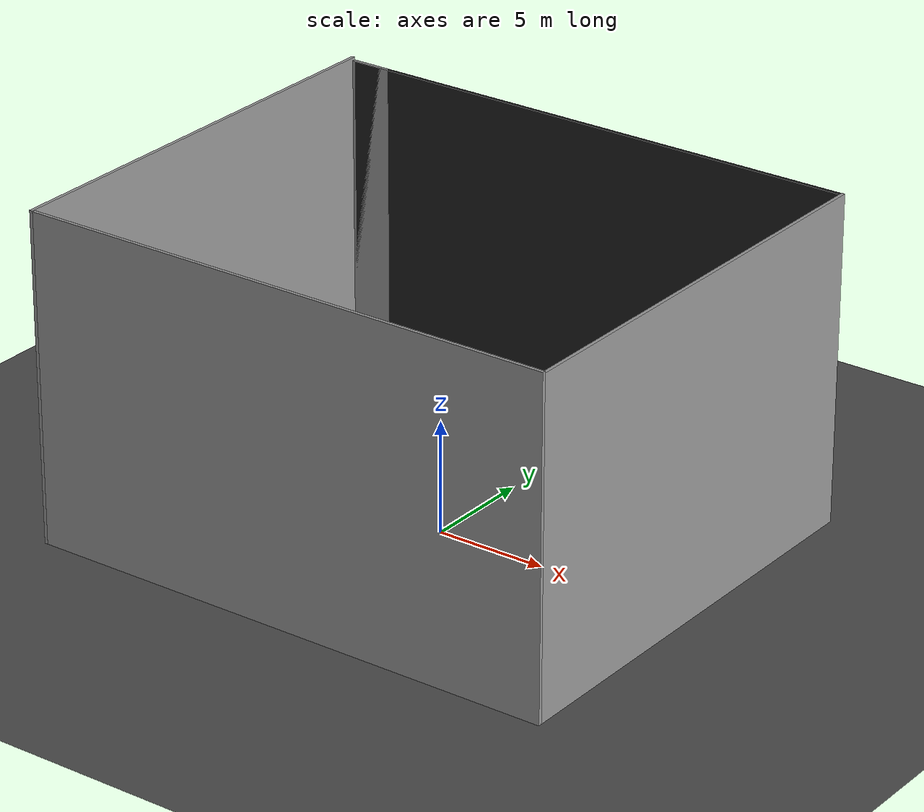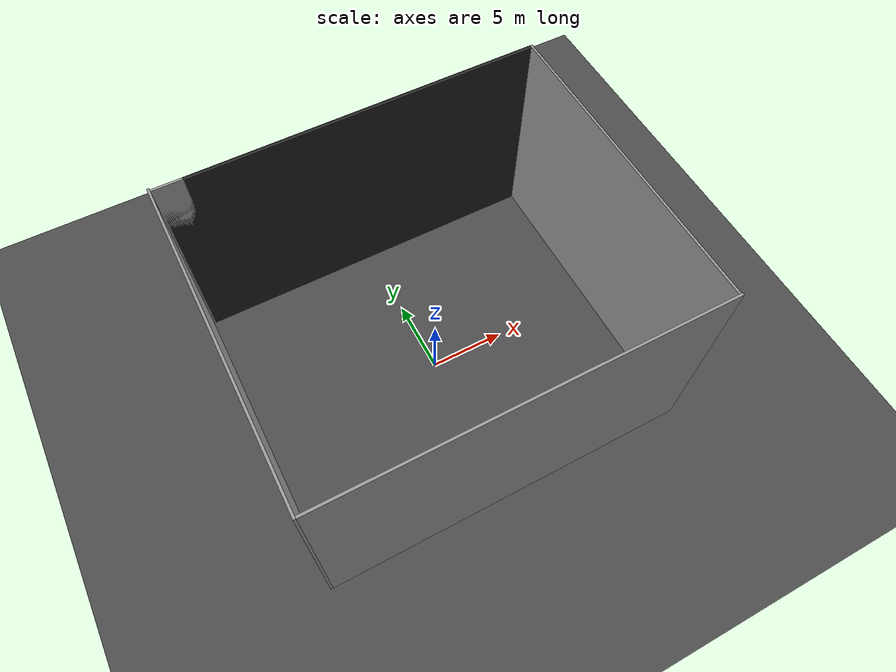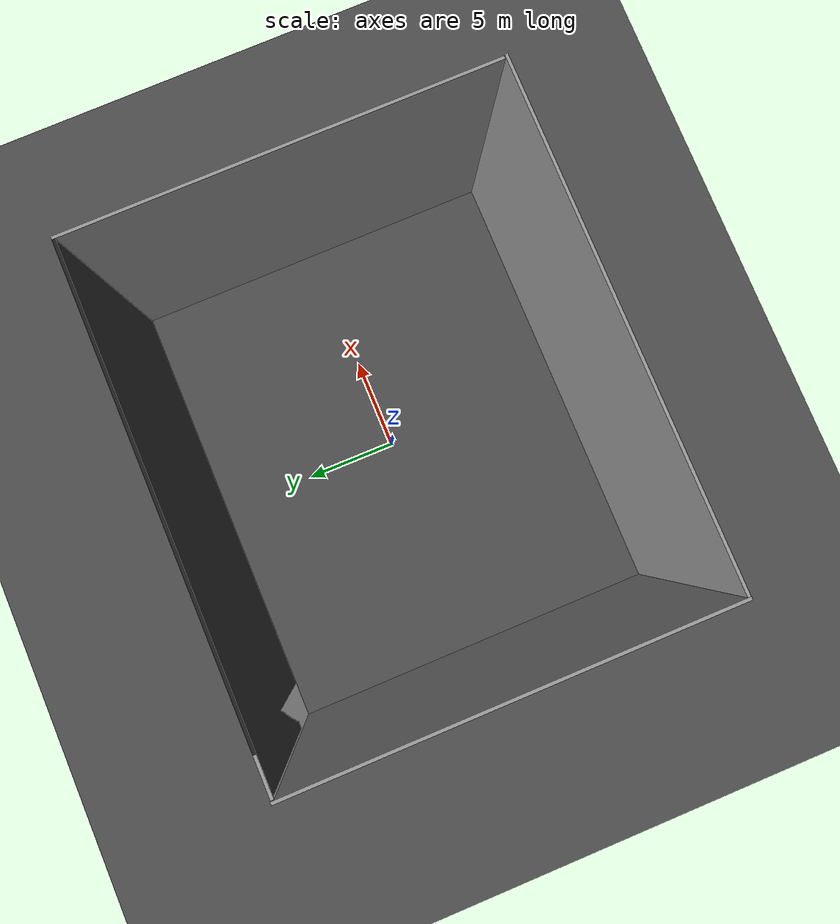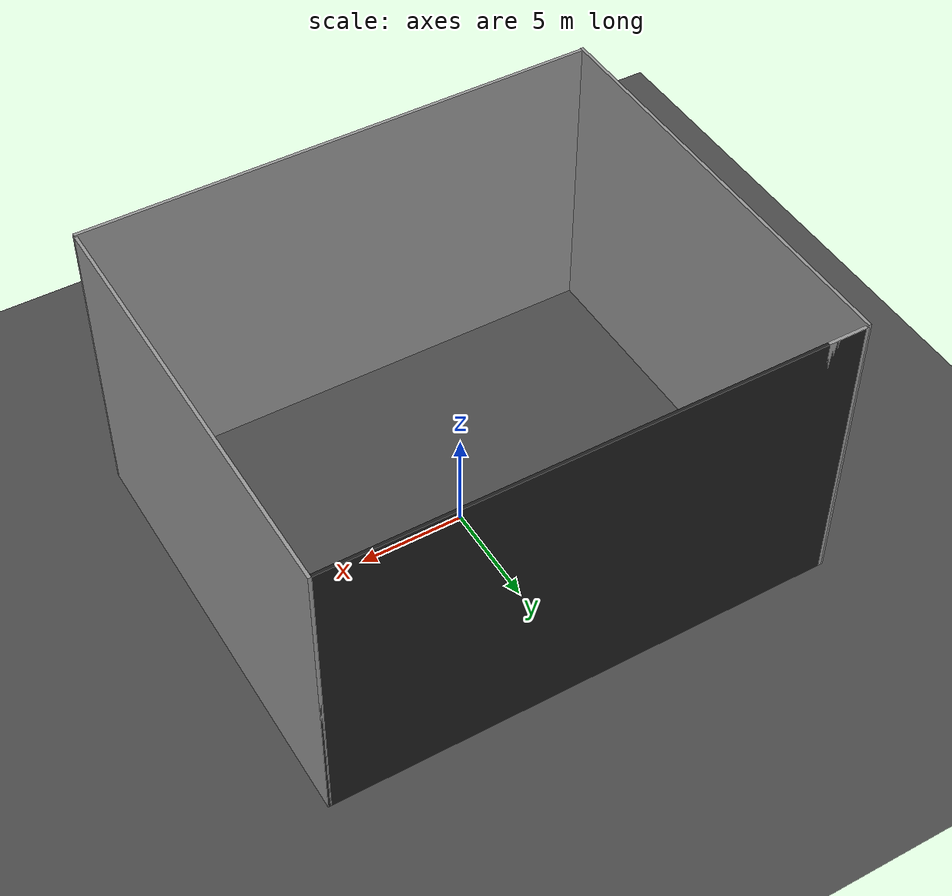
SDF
<sdf version="1.6">
 <world name="default">
  <model name="ground_plane">
   <static>1</static>
   <link name="link">
    <collision name="collision">
     <geometry><plane><normal>0 0 1</normal><size>100 100</size></plane></geometry>
     <surface>
      <contact><collide_bitmask>65535</collide_bitmask></contact>
      <friction><ode><mu>100</mu><mu2>50</mu2></ode></friction>
     </surface>
    </collision>
    <visual name="visual">
     <cast_shadows>0</cast_shadows>
     <geometry><plane><normal>0 0 1</normal><size>100 100</size></plane></geometry>
     <material>
      <script><uri>file://media/materials/scripts/gazebo.material</uri><name>Gazebo/DarkGrey</name></script>
     </material>
    </visual>
   </link>
  </model>
  <gravity>0 0 -9.8</gravity>
  <magnetic_field>6e-06 2.3e-05 -4.2e-05</magnetic_field>
  <atmosphere type="adiabatic"/>
  <physics name="default_physics" default="0" type="ode">
   <max_step_size>0.001</max_step_size>
   <real_time_factor>1</real_time_factor>
   <real_time_update_rate>1000</real_time_update_rate>
  </physics>
  <scene><ambient>0.4 0.4 0.4 1</ambient><background>0.7 0.7 0.7 1</background><shadows>1</shadows></scene>
  <audio><device>default</device></audio>
  <spherical_coordinates>
   <surface_model>EARTH_WGS84</surface_model>
   <latitude_deg>0</latitude_deg>
   <longitude_deg>0</longitude_deg>
   <elevation>0</elevation>
   <heading_deg>0</heading_deg>
  </spherical_coordinates>
  <model name="BlackBox">
   <link name="Wall_4">
    <pose>0.125 10.175 0 0 -0 0</pose>
    <inertial>
     <inertia><ixx>0</ixx><ixy>0</ixy><ixz>0</ixz><iyy>0</iyy><iyz>0</iyz><izz>0</izz></inertia>
     <mass>0</mass>
    </inertial>
    <visual name="Wall_4_Visual">
     <pose>0 0 1.25 0 -0 0</pose>
     <geometry><box><size>24.25 0.15 15.3832</size></box></geometry>
     <material>
      <script><uri>file://media/materials/scripts/gazebo.material</uri><name>Gazebo/Black</name></script>
      <ambient>0 0 0 1</ambient>
     </material>
     <meta><layer>0</layer></meta>
    </visual>
    <collision name="Wall_4_Collision">
     <pose>0 0 1.25 0 -0 0</pose>
     <geometry><box><size>24.25 0.15 15.3832</size></box></geometry>
     <surface>
      <friction>
       <ode><mu>1</mu><mu2>1</mu2><fdir1>0 0 0</fdir1><slip1>0</slip1><slip2>0</slip2></ode>
       <torsional>
        <coefficient>1</coefficient>
        <patch_radius>0</patch_radius>
        <surface_radius>0</surface_radius>
        <use_patch_radius>1</use_patch_radius>
        <ode><slip>0</slip></ode>
       </torsional>
      </friction>
      <bounce><restitution_coefficient>0</restitution_coefficient><threshold>1e+06</threshold></bounce>
      <contact>
       <collide_without_contact>0</collide_without_contact>
       <collide_without_contact_bitmask>1</collide_without_contact_bitmask>
       <collide_bitmask>1</collide_bitmask>
       <ode>
        <soft_cfm>0</soft_cfm>
        <soft_erp>0.2</soft_erp>
        <kp>1e+13</kp>
        <kd>1</kd>
        <max_vel>0.01</max_vel>
        <min_depth>0</min_depth>
       </ode>
       <bullet>
        <split_impulse>1</split_impulse>
        <split_impulse_penetration_threshold>-0.01</split_impulse_penetration_threshold>
        <soft_cfm>0</soft_cfm>
        <soft_erp>0.2</soft_erp>
        <kp>1e+13</kp>
        <kd>1</kd>
       </bullet>
      </contact>
     </surface>
    </collision>
   </link>
   <link name="Wall_5">
    <pose>12.175 0 0 0 0 -1.5708</pose>
    <inertial>
     <inertia><ixx>0</ixx><ixy>0</ixy><ixz>0</ixz><iyy>0</iyy><iyz>0</iyz><izz>0</izz></inertia>
     <mass>0</mass>
    </inertial>
    <visual name="Wall_5_Visual">
     <pose>0 0 1.25 0 -0 0</pose>
     <geometry><box><size>20.5 0.15 15.4088</size></box></geometry>
     <material>
      <script><uri>file://media/materials/scripts/gazebo.material</uri><name>Gazebo/Grey</name></script>
      <ambient>0 0 0 1</ambient>
     </material>
     <meta><layer>0</layer></meta>
    </visual>
    <collision name="Wall_5_Collision">
     <pose>0 0 1.25 0 -0 0</pose>
     <geometry><box><size>20.5 0.15 15.4088</size></box></geometry>
     <surface>
      <friction>
       <ode><mu>1</mu><mu2>1</mu2><fdir1>0 0 0</fdir1><slip1>0</slip1><slip2>0</slip2></ode>
       <torsional>
        <coefficient>1</coefficient>
        <patch_radius>0</patch_radius>
        <surface_radius>0</surface_radius>
        <use_patch_radius>1</use_patch_radius>
        <ode><slip>0</slip></ode>
       </torsional>
      </friction>
      <bounce><restitution_coefficient>0</restitution_coefficient><threshold>1e+06</threshold></bounce>
      <contact>
       <collide_without_contact>0</collide_without_contact>
       <collide_without_contact_bitmask>1</collide_without_contact_bitmask>
       <collide_bitmask>1</collide_bitmask>
       <ode>
        <soft_cfm>0</soft_cfm>
        <soft_erp>0.2</soft_erp>
        <kp>1e+13</kp>
        <kd>1</kd>
        <max_vel>0.01</max_vel>
        <min_depth>0</min_depth>
       </ode>
       <bullet>
        <split_impulse>1</split_impulse>
        <split_impulse_penetration_threshold>-0.01</split_impulse_penetration_threshold>
        <soft_cfm>0</soft_cfm>
        <soft_erp>0.2</soft_erp>
        <kp>1e+13</kp>
        <kd>1</kd>
       </bullet>
      </contact>
     </surface>
    </collision>
   </link>
   <link name="Wall_6">
    <pose>0 -10.175 0 0 -0 3.14159</pose>
    <inertial>
     <inertia><ixx>0</ixx><ixy>0</ixy><ixz>0</ixz><iyy>0</iyy><iyz>0</iyz><izz>0</izz></inertia>
     <mass>0</mass>
    </inertial>
    <visual name="Wall_6_Visual">
     <pose>0 0 1.25 0 -0 0</pose>
     <geometry><box><size>24.5 0.15 15.5832</size></box></geometry>
     <material>
      <script><uri>file://media/materials/scripts/gazebo.material</uri><name>Gazebo/Grey</name></script>
      <ambient>0 0 0 1</ambient>
     </material>
     <meta><layer>0</layer></meta>
    </visual>
    <collision name="Wall_6_Collision">
     <pose>0 0 1.25 0 -0 0</pose>
     <geometry><box><size>24.5 0.15 15.5832</size></box></geometry>
     <surface>
      <friction>
       <ode><mu>1</mu><mu2>1</mu2><fdir1>0 0 0</fdir1><slip1>0</slip1><slip2>0</slip2></ode>
       <torsional>
        <coefficient>1</coefficient>
        <patch_radius>0</patch_radius>
        <surface_radius>0</surface_radius>
        <use_patch_radius>1</use_patch_radius>
        <ode><slip>0</slip></ode>
       </torsional>
      </friction>
      <bounce><restitution_coefficient>0</restitution_coefficient><threshold>1e+06</threshold></bounce>
      <contact>
       <collide_without_contact>0</collide_without_contact>
       <collide_without_contact_bitmask>1</collide_without_contact_bitmask>
       <collide_bitmask>1</collide_bitmask>
       <ode>
        <soft_cfm>0</soft_cfm>
        <soft_erp>0.2</soft_erp>
        <kp>1e+13</kp>
        <kd>1</kd>
        <max_vel>0.01</max_vel>
        <min_depth>0</min_depth>
       </ode>
       <bullet>
        <split_impulse>1</split_impulse>
        <split_impulse_penetration_threshold>-0.01</split_impulse_penetration_threshold>
        <soft_cfm>0</soft_cfm>
        <soft_erp>0.2</soft_erp>
        <kp>1e+13</kp>
        <kd>1</kd>
       </bullet>
      </contact>
     </surface>
    </collision>
   </link>
   <link name="Wall_7">
    <pose>-12.175 0 0 0 -0 1.5708</pose>
    <inertial>
     <inertia><ixx>0</ixx><ixy>0</ixy><ixz>0</ixz><iyy>0</iyy><iyz>0</iyz><izz>0</izz></inertia>
     <mass>0</mass>
    </inertial>
    <visual name="Wall_7_Visual">
     <pose>0 0 1.25 0 -0 0</pose>
     <geometry><box><size>20.5 0.15 15.6333</size></box></geometry>
     <material>
      <script><uri>file://media/materials/scripts/gazebo.material</uri><name>Gazebo/Grey</name></script>
      <ambient>0 0 0 1</ambient>
     </material>
     <meta><layer>0</layer></meta>
    </visual>
    <collision name="Wall_7_Collision">
     <pose>0 0 1.25 0 -0 0</pose>
     <geometry><box><size>20.5 0.15 15.6333</size></box></geometry>
     <surface>
      <friction>
       <ode><mu>1</mu><mu2>1</mu2><fdir1>0 0 0</fdir1><slip1>0</slip1><slip2>0</slip2></ode>
       <torsional>
        <coefficient>1</coefficient>
        <patch_radius>0</patch_radius>
        <surface_radius>0</surface_radius>
        <use_patch_radius>1</use_patch_radius>
        <ode><slip>0</slip></ode>
       </torsional>
      </friction>
      <bounce><restitution_coefficient>0</restitution_coefficient><threshold>1e+06</threshold></bounce>
      <contact>
       <collide_without_contact>0</collide_without_contact>
       <collide_without_contact_bitmask>1</collide_without_contact_bitmask>
       <collide_bitmask>1</collide_bitmask>
       <ode>
        <soft_cfm>0</soft_cfm>
        <soft_erp>0.2</soft_erp>
        <kp>1e+13</kp>
        <kd>1</kd>
        <max_vel>0.01</max_vel>
        <min_depth>0</min_depth>
       </ode>
       <bullet>
        <split_impulse>1</split_impulse>
        <split_impulse_penetration_threshold>-0.01</split_impulse_penetration_threshold>
        <soft_cfm>0</soft_cfm>
        <soft_erp>0.2</soft_erp>
        <kp>1e+13</kp>
        <kd>1</kd>
       </bullet>
      </contact>
     </surface>
    </collision>
   </link>
   <link name="Wall_8">
    <pose>-11.25 10.175 0 0 -0 0</pose>
    <inertial>
     <inertia><ixx>0</ixx><ixy>0</ixy><ixz>0</ixz><iyy>0</iyy><iyz>0</iyz><izz>0</izz></inertia>
     <mass>0</mass>
    </inertial>
    <visual name="Wall_8_Visual">
     <pose>0 0 1.25 0 -0 0</pose>
     <geometry><box><size>2 0.15 15.3946</size></box></geometry>
     <material>
      <script><uri>file://media/materials/scripts/gazebo.material</uri><name>Gazebo/Grey</name></script>
      <ambient>0 0 0 1</ambient>
     </material>
     <meta><layer>0</layer></meta>
    </visual>
    <collision name="Wall_8_Collision">
     <pose>0 0 1.25 0 -0 0</pose>
     <geometry><box><size>2 0.15 15.3946</size></box></geometry>
     <surface>
      <friction>
       <ode><mu>1</mu><mu2>1</mu2><fdir1>0 0 0</fdir1><slip1>0</slip1><slip2>0</slip2></ode>
       <torsional>
        <coefficient>1</coefficient>
        <patch_radius>0</patch_radius>
        <surface_radius>0</surface_radius>
        <use_patch_radius>1</use_patch_radius>
        <ode><slip>0</slip></ode>
       </torsional>
      </friction>
      <bounce><restitution_coefficient>0</restitution_coefficient><threshold>1e+06</threshold></bounce>
      <contact>
       <collide_without_contact>0</collide_without_contact>
       <collide_without_contact_bitmask>1</collide_without_contact_bitmask>
       <collide_bitmask>1</collide_bitmask>
       <ode>
        <soft_cfm>0</soft_cfm>
        <soft_erp>0.2</soft_erp>
        <kp>1e+13</kp>
        <kd>1</kd>
        <max_vel>0.01</max_vel>
        <min_depth>0</min_depth>
       </ode>
       <bullet>
        <split_impulse>1</split_impulse>
        <split_impulse_penetration_threshold>-0.01</split_impulse_penetration_threshold>
        <soft_cfm>0</soft_cfm>
        <soft_erp>0.2</soft_erp>
        <kp>1e+13</kp>
        <kd>1</kd>
       </bullet>
      </contact>
     </surface>
    </collision>
   </link>
   <link name="link_0">
    <inertial>
     <mass>575.311</mass>
     <inertia><ixx>23436.5</ixx><ixy>0</ixy><ixz>0</ixz><iyy>32574.7</iyy><iyz>0</iyz><izz>55915.3</izz></inertia>
    </inertial>
    <pose>0.181003 0.223493 -6.3585 0 -0 0</pose>
    <visual name="visual">
     <geometry><box><size>26.0471 22.0872 1</size></box></geometry>
     <material>
      <lighting>1</lighting>
      <script><uri>file://media/materials/scripts/gazebo.material</uri><name>Gazebo/Black</name></script>
      <shader type="vertex"><normal_map>__default__</normal_map></shader>
      <ambient>0 0 0 1</ambient>
      <diffuse>0 0 0 1</diffuse>
      <specular>0.1 0.1 0.1 1</specular>
      <emissive>0 0 0 1</emissive>
     </material>
    </visual>
    <collision name="collision">
     <geometry><box><size>26.0471 22.0872 1</size></box></geometry>
     <surface>
      <friction>
       <ode><mu>1</mu><mu2>1</mu2><fdir1>0 0 0</fdir1><slip1>0</slip1><slip2>0</slip2></ode>
       <torsional>
        <coefficient>1</coefficient>
        <patch_radius>0</patch_radius>
        <surface_radius>0</surface_radius>
        <use_patch_radius>1</use_patch_radius>
        <ode><slip>0</slip></ode>
       </torsional>
      </friction>
      <bounce><restitution_coefficient>0</restitution_coefficient><threshold>1e+06</threshold></bounce>
      <contact>
       <collide_without_contact>0</collide_without_contact>
       <collide_without_contact_bitmask>1</collide_without_contact_bitmask>
       <collide_bitmask>1</collide_bitmask>
       <ode>
        <soft_cfm>0</soft_cfm>
        <soft_erp>0.2</soft_erp>
        <kp>1e+13</kp>
        <kd>1</kd>
        <max_vel>0.01</max_vel>
        <min_depth>0</min_depth>
       </ode>
       <bullet>
        <split_impulse>1</split_impulse>
        <split_impulse_penetration_threshold>-0.01</split_impulse_penetration_threshold>
        <soft_cfm>0</soft_cfm>
        <soft_erp>0.2</soft_erp>
        <kp>1e+13</kp>
        <kd>1</kd>
       </bullet>
      </contact>
     </surface>
    </collision>
   </link>
   <static>1</static>
   <pose>-0.102863 0.027 5.51747 0 -0 0</pose>
  </model>
  <light name="user_spot_light_0" type="spot">
   <pose>-9.60839 -7.2344 1 0 -0 0</pose>
   <diffuse>0.5 0.5 0.5 1</diffuse>
   <specular>0.1 0.1 0.1 1</specular>
   <direction>0 0 -1</direction>
   <attenuation>
    <range>20</range>
    <constant>0.5</constant>
    <linear>0.01</linear>
    <quadratic>0.001</quadratic>
   </attenuation>
   <cast_shadows>0</cast_shadows>
   <spot><inner_angle>0.6</inner_angle><outer_angle>1</outer_angle><falloff>1</falloff></spot>
  </light>
 </world>
</sdf>
